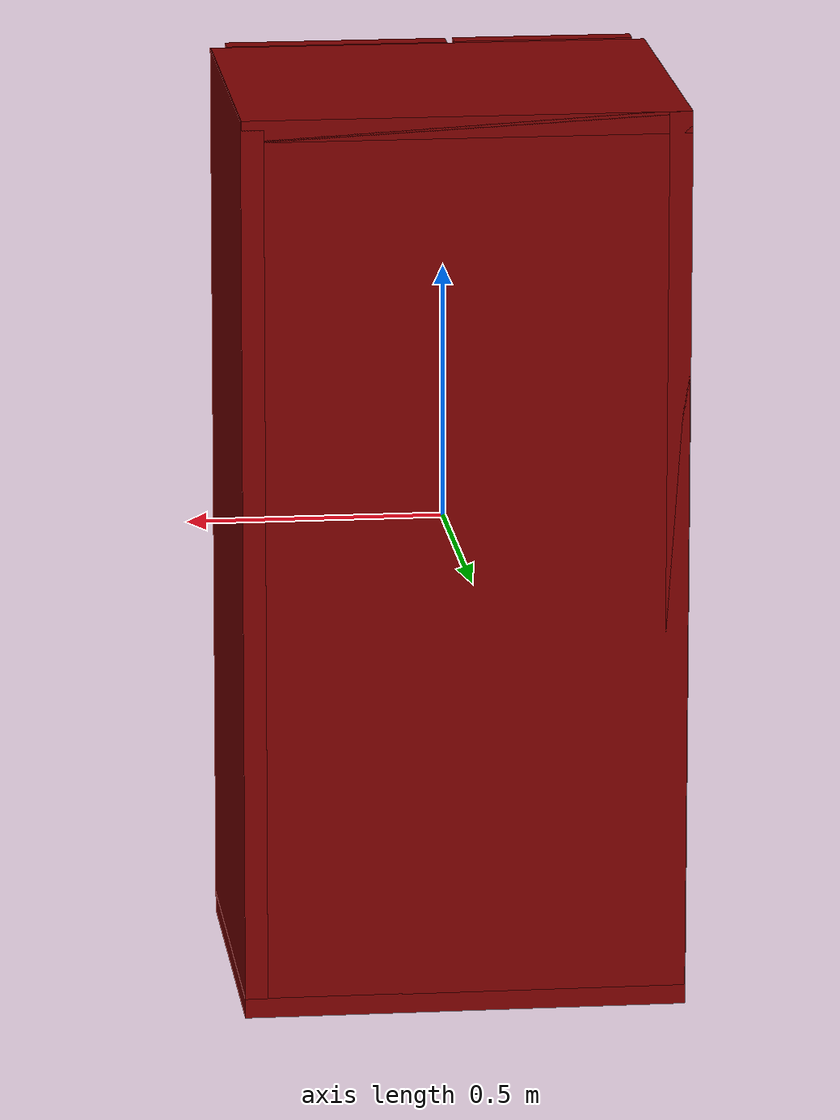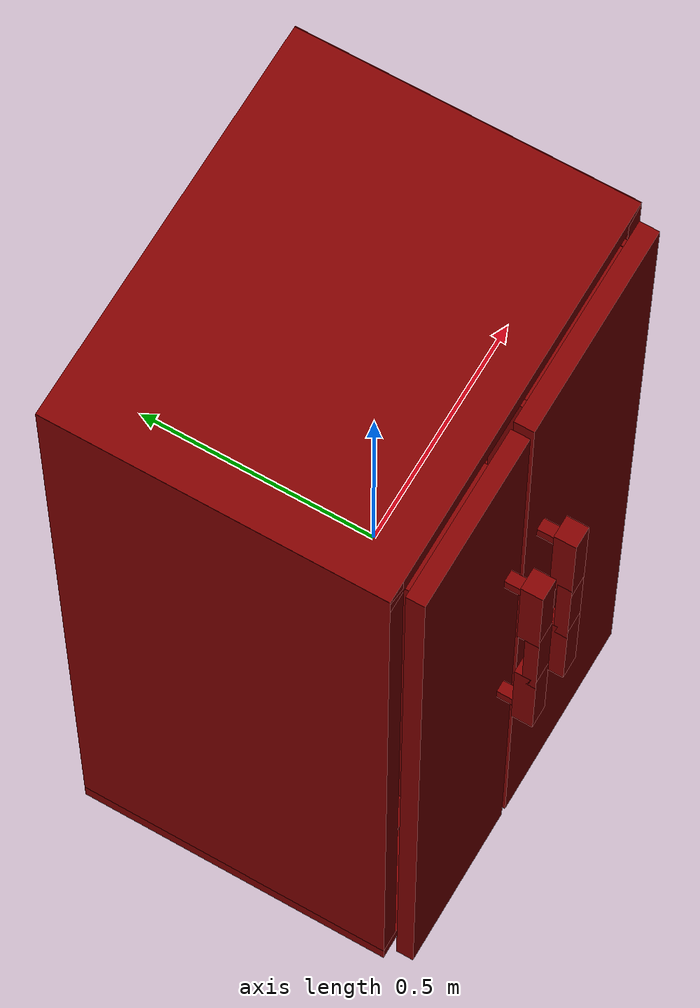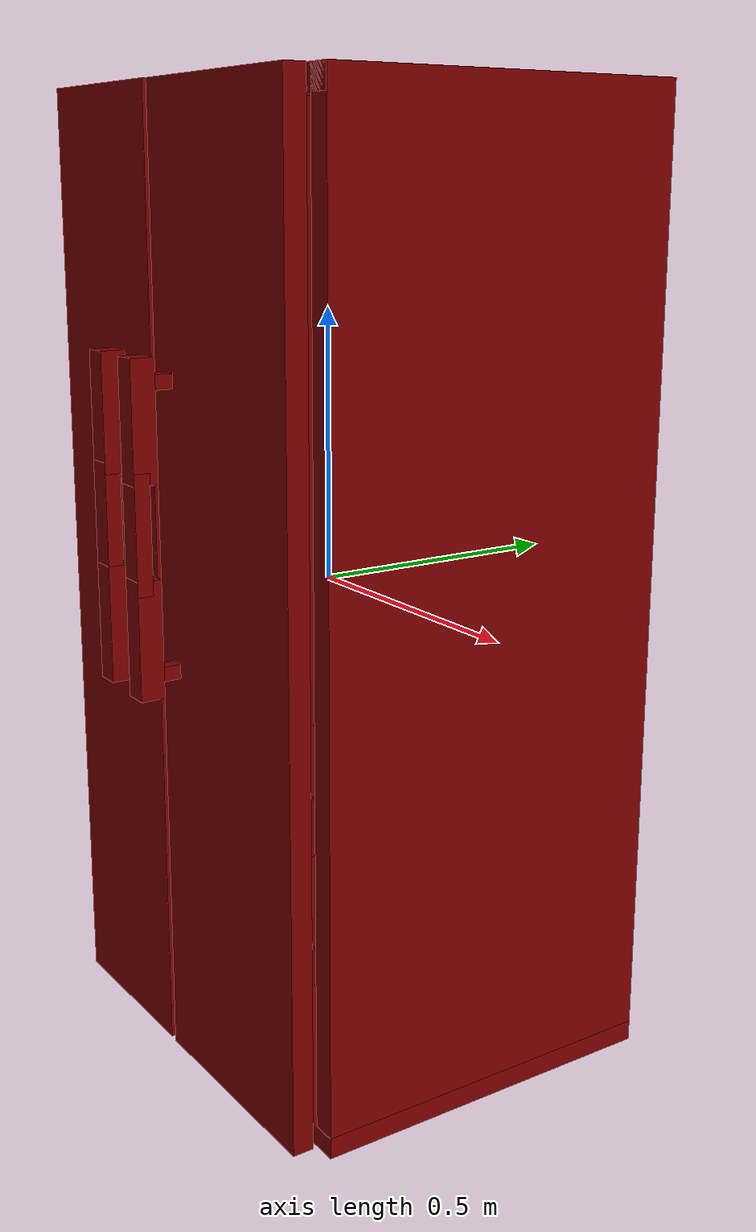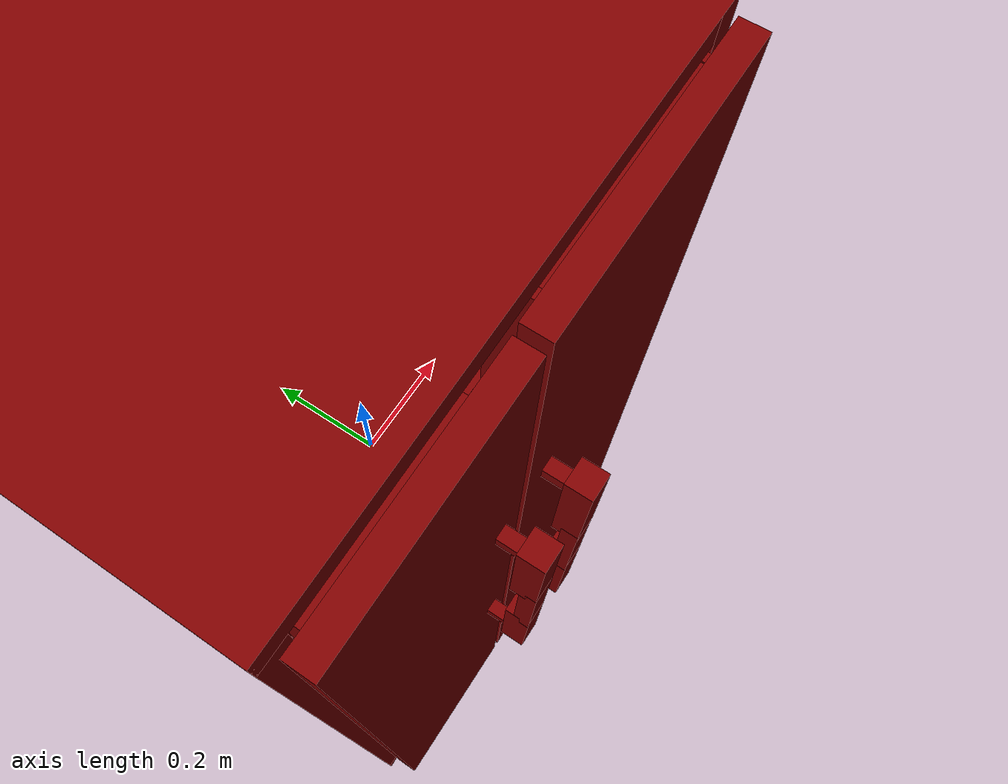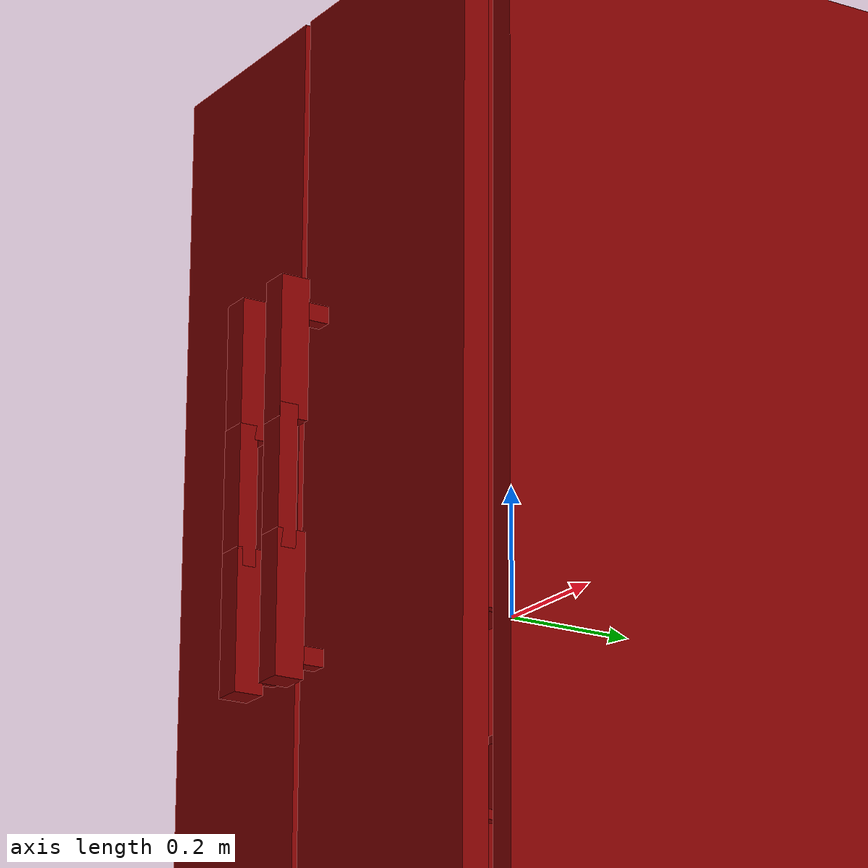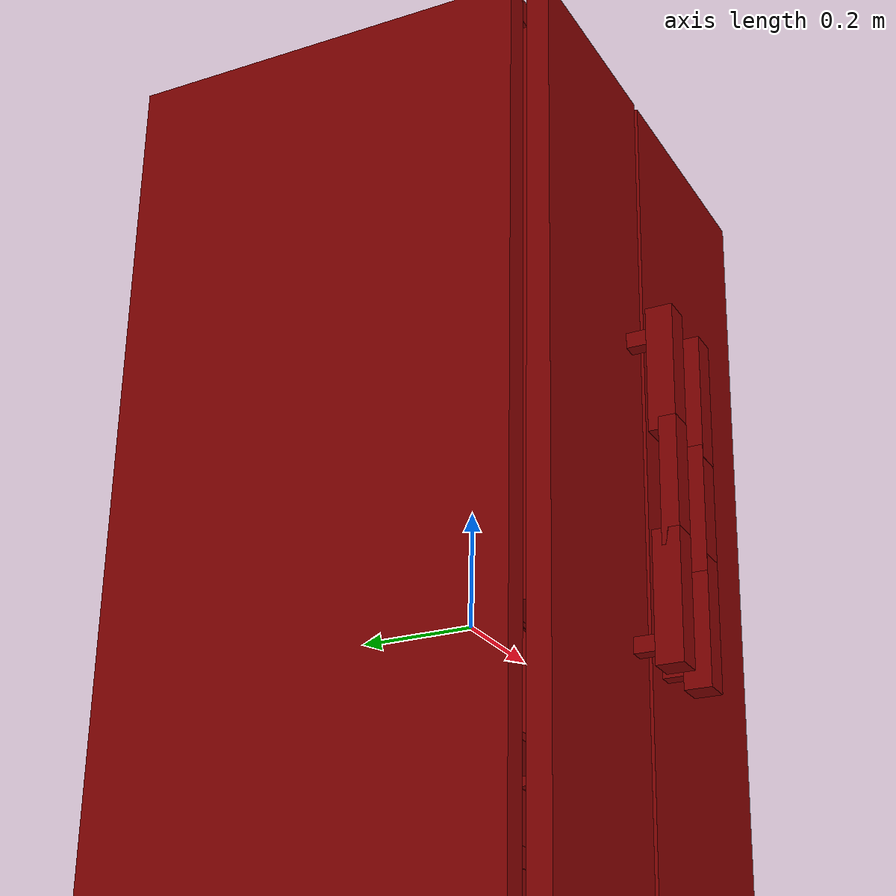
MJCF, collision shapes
<?xml version='1.0' encoding='UTF-8'?>
<mujoco model="model">
  <option timestep="0.002" gravity="0.0 0.0 -9.81"/>
  <compiler angle="radian"/>
  <asset>
    <mesh file="visuals/freezer_door.obj" name="freezer_door_vis"/>
    <mesh file="visuals/freezer_drawer0.obj" name="freezer_drawer0_vis"/>
    <mesh file="visuals/freezer_drawer1.obj" name="freezer_drawer1_vis"/>
    <mesh file="visuals/fridge_door.obj" name="fridge_door_vis"/>
    <mesh file="visuals/fridge_door_Clear.obj" name="fridge_door_Clear_vis"/>
    <mesh file="visuals/Body001.obj" name="Body001_vis"/>
    <mesh file="visuals/Body001_Clear.obj" name="Body001_Clear_vis"/>
    <texture file="visuals/T_BC001.png" name="Body001_material" type="2d"/>
    <material name="Body001_material" rgba="1 1 1 1.0" texture="Body001_material" shininess="0.1" specular="3"/>
    <texture file="visuals/T_BC001.png" name="freezer_door_material" type="2d"/>
    <material name="freezer_door_material" rgba="1 1 1 1.0" texture="freezer_door_material" shininess="0.1" specular="3"/>
    <texture file="visuals/T_BC001.png" name="freezer_drawer0_material" type="2d"/>
    <material name="freezer_drawer0_material" rgba="1 1 1 1.0" texture="freezer_drawer0_material" shininess="0.1" specular="3"/>
    <texture file="visuals/T_BC001.png" name="freezer_drawer1_material" type="2d"/>
    <material name="freezer_drawer1_material" rgba="1 1 1 1.0" texture="freezer_drawer1_material" shininess="0.1" specular="3"/>
    <texture file="visuals/T_BC001.png" name="fridge_door_material" type="2d"/>
    <material name="fridge_door_material" rgba="1 1 1 1.0" texture="fridge_door_material" shininess="0.1" specular="3"/>
    <material name="fridge_door_Clear_material" rgba="0.5225023627281189 0.5225023627281189 0.5225023627281189 0.699999988079071" shininess="0.141421377658844" specular="0.3103448502657381"/>
    <material name="Body001_Clear_material" rgba="0.5225023627281189 0.5225023627281189 0.5225023627281189 0.699999988079071" shininess="0.141421377658844" specular="0.3103448502657381"/>
  </asset>
  <default>
    <default class="visual">
      <geom conaffinity="0" contype="0" group="1" type="mesh"/>
    </default>
    <default class="collision">
      <geom group="0" rgba="0.5 0 0 0.5"/>
    </default>
    <default class="spawn">
      <geom group="0" rgba="1 1 1 0.5" contype="0" conaffinity="0"/>
      <site group="0" rgba="1 1 1 0.5"/>
    </default>
    <default class="region">
      <geom group="1" conaffinity="0" contype="0" rgba="0 1 0 0"/>
    </default>
  </default>
  <worldbody>
    <body>
      <body name="object">
        <geom mesh="Body001_vis" type="mesh" solimp="0.998 0.998 0.001" solref="0.001 1" friction="0.95 0.3 0.1" class="visual" material="Body001_material"/>
        <geom class="collision" type="box" pos="-0.40558642 0.06646353 0.01893135" size="0.02224147319793701 0.34106025099754333 0.864154577255249" quat="1.0 0.0 0.0 0.0"/>
        <geom class="collision" type="box" pos="0.00000081 0.06646352 -0.86372477" size="0.42782869935035706 0.3410602807998657 0.01953286863863468" quat="1.0 0.0 0.0 0.0"/>
        <geom class="collision" type="box" pos="-0.00048127 0.31476472 0.01871308" size="0.4260132610797882 0.09275908768177032 0.8639363050460815" quat="1.0 0.0 0.0 0.0"/>
        <geom class="collision" type="box" pos="0.40598068 0.06646352 0.01891451" size="0.021848827600479126 0.3410602807998657 0.8641376495361328" quat="1.0 0.0 0.0 0.0"/>
        <geom class="collision" type="box" pos="-0.00068813 0.06646353 0.86222970" size="0.42693495750427246 0.3410602807998657 0.02102789282798767" quat="1.0 0.0 0.0 0.0"/>
        <geom class="collision" type="box" pos="0.18456398 0.02568358 0.46186185" size="0.19157791137695312 0.20363794267177582 0.005747407674789429" quat="1.0 0.0 0.0 0.0"/>
        <geom class="collision" type="box" pos="-0.05482076 0.00737048 0.00068855" size="0.03563910722732544 0.21613869071006775 0.8459117412567139" quat="1.0 0.0 0.0 0.0"/>
        <geom class="collision" type="box" pos="0.18456398 0.02889352 0.10416166" size="0.19157791137695312 0.2068478763103485 0.005796272307634354" quat="1.0 0.0 0.0 0.0"/>
        <geom class="collision" type="box" pos="0.18456398 0.00420585 -0.28317815" size="0.19157791137695312 0.23139290511608124 0.005800843238830566" quat="1.0 0.0 0.0 0.0"/>
        <geom class="collision" type="box" pos="0.18456398 0.00519841 -0.56386238" size="0.19157791137695312 0.228432759642601 0.005818471312522888" quat="1.0 0.0 0.0 0.0"/>
        <geom class="collision" type="box" pos="-0.37449354 0.01452575 0.09073272" size="0.009720588102936745 0.20451779663562775 0.007476826664060354" quat="1.0 0.0 0.0 0.0"/>
        <geom class="collision" type="box" pos="-0.09935053 0.01452575 0.09073272" size="0.009720588102936745 0.20451779663562775 0.007476826664060354" quat="1.0 0.0 0.0 0.0"/>
        <geom class="collision" type="box" pos="-0.09935053 0.01452575 0.44766188" size="0.009720588102936745 0.20451779663562775 0.007476826664060354" quat="1.0 0.0 0.0 0.0"/>
        <geom class="collision" type="box" pos="-0.37449354 0.01452575 0.44766188" size="0.009720588102936745 0.20451779663562775 0.007476826664060354" quat="1.0 0.0 0.0 0.0"/>
        <geom class="collision" type="box" pos="-0.09935053 0.01452575 -0.29702917" size="0.009720588102936745 0.20451779663562775 0.007476826664060354" quat="1.0 0.0 0.0 0.0"/>
        <geom class="collision" type="box" pos="-0.37449354 0.01452575 -0.29702917" size="0.009720588102936745 0.20451779663562775 0.007476826664060354" quat="1.0 0.0 0.0 0.0"/>
        <geom class="collision" type="box" pos="-0.37449354 0.01452575 -0.57634544" size="0.009720588102936745 0.20451779663562775 0.007476826664060354" quat="1.0 0.0 0.0 0.0"/>
        <geom class="collision" type="box" pos="-0.09935053 0.01452575 -0.57634544" size="0.009720588102936745 0.20451779663562775 0.007476826664060354" quat="1.0 0.0 0.0 0.0"/>
        <geom class="collision" type="box" pos="0.37541348 0.01452575 -0.57634544" size="0.009720588102936745 0.20451779663562775 0.007476826664060354" quat="1.0 0.0 0.0 0.0"/>
        <geom class="collision" type="box" pos="-0.01160499 0.01452575 -0.57634544" size="0.012617391534149647 0.20451779663562775 0.007476826664060354" quat="1.0 0.0 0.0 0.0"/>
        <geom class="collision" type="box" pos="-0.01160499 0.01452575 -0.29702917" size="0.012617391534149647 0.20451779663562775 0.007476826664060354" quat="1.0 0.0 0.0 0.0"/>
        <geom class="collision" type="box" pos="0.37541348 0.01452575 -0.29702917" size="0.009720588102936745 0.20451779663562775 0.007476826664060354" quat="1.0 0.0 0.0 0.0"/>
        <geom class="collision" type="box" pos="-0.01160499 0.01452575 0.44766188" size="0.012617391534149647 0.20451779663562775 0.007476826664060354" quat="1.0 0.0 0.0 0.0"/>
        <geom class="collision" type="box" pos="0.37541348 0.01452575 0.44766188" size="0.009720588102936745 0.20451779663562775 0.007476826664060354" quat="1.0 0.0 0.0 0.0"/>
        <geom class="collision" type="box" pos="0.37541348 0.01452575 0.09073272" size="0.009720588102936745 0.20451779663562775 0.007476826664060354" quat="1.0 0.0 0.0 0.0"/>
        <geom class="collision" type="box" pos="-0.01160499 0.01452575 0.09073272" size="0.012617391534149647 0.20451779663562775 0.007476826664060354" quat="1.0 0.0 0.0 0.0"/>
        <geom class="collision" type="box" pos="-0.23986101 0.00519841 -0.56386238" size="0.15474635362625122 0.228432759642601 0.005818471312522888" quat="1.0 0.0 0.0 0.0"/>
        <geom class="collision" type="box" pos="-0.23986101 0.00420585 -0.28317815" size="0.15474635362625122 0.23139290511608124 0.005800843238830566" quat="1.0 0.0 0.0 0.0"/>
        <geom class="collision" type="box" pos="-0.23986101 0.02889352 0.10416166" size="0.15474635362625122 0.2068478763103485 0.005796272307634354" quat="1.0 0.0 0.0 0.0"/>
        <geom class="collision" type="box" pos="-0.23986101 0.02568358 0.46186185" size="0.15474635362625122 0.20363794267177582 0.005747407674789429" quat="1.0 0.0 0.0 0.0"/>
        <body name="freezer_door">
          <joint axis="0.0 0.0 -1.0" pos="-0.40142199 -0.30193393 0.00226963" limited="true" name="freezer_door_joint" range="0.0 1.5707963267948966" type="hinge" damping="1" frictionloss="1" armature=".01" stiffness="0.05"/>
          <geom mesh="freezer_door_vis" type="mesh" solimp="0.998 0.998 0.001" solref="0.001 1" friction="0.95 0.3 0.1" class="visual" material="freezer_door_material"/>
          <geom class="collision" type="box" pos="-0.10201722 -0.34847351 0.39473000" size="0.012457430362701416 0.022546809166669846 0.013203483074903488" quat="1.0 0.0 0.0 0.0" name="freezer_door_handle_1"/>
          <geom class="collision" type="box" pos="-0.10201722 -0.34847363 -0.11380103" size="0.012457430362701416 0.022546809166669846 0.013203475624322891" quat="1.0 0.0 0.0 0.0" name="freezer_door_handle_4"/>
          <geom class="collision" type="box" pos="-0.10135063 -0.38698669 0.33145750" size="0.02305717021226883 0.022403938695788383 0.10686296969652176" quat="1.0 0.0 0.0 0.0" name="freezer_door_handle_2"/>
          <geom class="collision" type="box" pos="-0.10135063 -0.38763853 -0.04615949" size="0.02305717021226883 0.02240392193198204 0.10686295479536057" quat="1.0 0.0 0.0 0.0" name="freezer_door_handle_3"/>
          <geom class="collision" type="box" pos="-0.10135063 -0.39540501 0.13958685" size="0.02305717021226883 0.014506700448691845 0.10626012086868286" quat="1.0 0.0 0.0 0.0" name="freezer_door_handle_main"/>
          <geom class="collision" type="box" pos="-0.22960231 -0.30920227 0.00329760" size="0.17586880922317505 0.018665660172700882 0.879378080368042" quat="1.0 0.0 0.0 0.0" name="freezer_door_main"/>
          <geom class="collision" type="box" pos="-0.14295837 -0.20212524 -0.04004654" size="0.005480065941810608 0.030950354412198067 0.0417511947453022" quat="1.0 0.0 0.0 0.0"/>
          <geom class="collision" type="box" pos="-0.24828275 -0.17534315 -0.04164654" size="0.10006259381771088 0.002234865678474307 0.0401512011885643" quat="1.0 0.0 0.0 0.0"/>
          <geom class="collision" type="box" pos="-0.35010812 -0.20212524 -0.04004654" size="0.005480064079165459 0.030950354412198067 0.0417511947453022" quat="1.0 0.0 0.0 0.0"/>
          <geom class="collision" type="box" pos="-0.24668524 -0.20212524 -0.07657582" size="0.09915632009506226 0.030950354412198067 0.005221928935497999" quat="1.0 0.0 0.0 0.0"/>
          <geom class="collision" type="box" pos="-0.24253975 -0.25912248 0.35766223" size="0.13268016278743744 0.02590564265847206 0.4776783585548401" quat="1.0 0.0 0.0 0.0"/>
        </body>
        <body name="freezer_drawer0">
          <geom class="region" name="reg_freezer_drawer0" type="box" pos="-0.211152965 0.005938525 -0.7072643649999999" size="0.09888519500000001 0.138482465 0.104442015"/>
          <joint axis="0.0 -1.0 0.0" pos="-0.21256955 -0.00256586 -0.71427310" limited="true" name="freezer_drawer0_joint" range="0.0 0.4" type="slide" damping="1" frictionloss="1" armature=".01" stiffness="0.05"/>
          <geom mesh="freezer_drawer0_vis" type="mesh" solimp="0.998 0.998 0.001" solref="0.001 1" friction="0.95 0.3 0.1" class="visual" material="freezer_drawer0_material"/>
          <geom class="collision" type="box" pos="-0.21376190 -0.00261774 -0.81944394" size="0.11214364320039749 0.1556040346622467 0.0026356198359280825" quat="1.0 0.0 0.0 0.0"/>
          <geom class="collision" type="box" pos="-0.10495828 -0.00261774 -0.71025378" size="0.002996751107275486 0.15560412406921387 0.11202725768089294" quat="1.0 0.0 0.0 0.0"/>
          <geom class="collision" type="box" pos="-0.32125536 -0.00261774 -0.71025372" size="0.004637867212295532 0.15560421347618103 0.11202718317508698" quat="1.0 0.0 0.0 0.0"/>
          <geom class="collision" type="box" pos="-0.21376188 0.15405954 -0.71025378" size="0.11214320361614227 0.0037469391245394945 0.11202709376811981" quat="1.0 0.0 0.0 0.0"/>
          <geom class="collision" type="box" pos="-0.21293235 -0.15002160 -0.63882315" size="0.1203082725405693 0.012931019999086857 0.04129289835691452" quat="1.0 0.0 0.0 0.0"/>
          <geom class="collision" type="box" pos="-0.21293235 -0.15002160 -0.77246428" size="0.1203082725405693 0.01293113175779581 0.05884507670998573" quat="1.0 0.0 0.0 0.0"/>
          <geom class="collision" type="box" pos="-0.28778118 -0.15002160 -0.69676310" size="0.045459430664777756 0.012931142002344131 0.016322702169418335" quat="1.0 0.0 0.0 0.0"/>
          <geom class="collision" type="box" pos="-0.12964216 -0.15002160 -0.69676310" size="0.03674136474728584 0.012931152246892452 0.016322722658514977" quat="1.0 0.0 0.0 0.0"/>
          <geom class="collision" type="box" pos="-0.20464267 -0.13960667 -0.69676310" size="0.03674136474728584 0.002516374457627535 0.01632274128496647" quat="1.0 0.0 0.0 0.0"/>
          <geom class="collision" type="box" pos="-0.20464267 -0.14920171 -0.69691926" size="0.03674136474728584 0.0025164210237562656 0.016323115676641464" quat="0.9614013433456421 -0.27514979243278503 -0.0 0.0"/>
        </body>
        <body name="freezer_drawer1">
          <geom class="region" name="reg_freezer_drawer1" type="box" pos="-0.211152965 0.005938525 -0.4326818" size="0.09888519500000001 0.138482465 0.10441573000000001"/>
          <joint axis="0.0 -1.0 0.0" pos="-0.21256955 -0.00256586 -0.43849957" limited="true" name="freezer_drawer1_joint" range="0.0 0.4" type="slide" damping="1" frictionloss="1" armature=".01" stiffness="0.05"/>
          <geom mesh="freezer_drawer1_vis" type="mesh" solimp="0.998 0.998 0.001" solref="0.001 1" friction="0.95 0.3 0.1" class="visual" material="freezer_drawer1_material"/>
          <geom class="collision" type="box" pos="-0.21250020 -0.15110717 -0.36350054" size="0.12162725627422333 0.013595592230558395 0.04247790947556496" quat="1.0 0.0 0.0 0.0"/>
          <geom class="collision" type="box" pos="-0.21214403 0.15532319 -0.43599984" size="0.11226984858512878 0.005191416013985872 0.11213696748018265" quat="1.0 0.0 0.0 0.0"/>
          <geom class="collision" type="box" pos="-0.32137153 -0.00009128 -0.43599984" size="0.0030306766275316477 0.15578614175319672 0.11213703453540802" quat="1.0 0.0 0.0 0.0"/>
          <geom class="collision" type="box" pos="-0.10397597 -0.00009128 -0.43599984" size="0.003758735489100218 0.1557861566543579 0.11213710159063339" quat="1.0 0.0 0.0 0.0"/>
          <geom class="collision" type="box" pos="-0.21214405 -0.00009128 -0.54473317" size="0.11226989328861237 0.1557861715555191 0.0031994571909308434" quat="1.0 0.0 0.0 0.0"/>
          <geom class="collision" type="box" pos="-0.20464267 -0.15084273 -0.42125165" size="0.03674136474728584 0.0025164210237562656 0.016323115676641464" quat="0.9613451957702637 -0.27534598112106323 -0.0 0.0"/>
          <geom class="collision" type="box" pos="-0.20464267 -0.13960667 -0.42019361" size="0.03674136474728584 0.002516377018764615 0.01632276177406311" quat="1.0 0.0 0.0 0.0"/>
          <geom class="collision" type="box" pos="-0.12882850 -0.15106819 -0.42019361" size="0.0375550352036953 0.013977772556245327 0.016322782263159752" quat="1.0 0.0 0.0 0.0"/>
          <geom class="collision" type="box" pos="-0.28778118 -0.15106819 -0.42019361" size="0.045459430664777756 0.013977782800793648 0.016322802752256393" quat="1.0 0.0 0.0 0.0"/>
          <geom class="collision" type="box" pos="-0.21211869 -0.15106819 -0.49589482" size="0.12112192809581757 0.013977793045341969 0.0588456466794014" quat="1.0 0.0 0.0 0.0"/>
        </body>
        <body name="fridge_door">
          <joint axis="0.0 0.0 1.0" pos="0.40183154 -0.30193393 0.00263427" limited="true" name="fridge_door_joint" range="0.0 1.5707963267948966" type="hinge" damping="1" frictionloss="1" armature=".01" stiffness="0.05"/>
          <geom mesh="fridge_door_vis" type="mesh" solimp="0.998 0.998 0.001" solref="0.001 1" friction="0.95 0.3 0.1" class="visual" material="fridge_door_material"/>
          <geom class="collision" type="box" pos="0.01425793 -0.34956708 0.39272022" size="0.012510329484939575 0.022645458579063416 0.01325976476073265" quat="1.0 0.0 0.0 0.0" name="fridge_door_handle_1"/>
          <geom class="collision" type="box" pos="0.01425793 -0.34956719 -0.11811678" size="0.012510430067777634 0.022645561024546623 0.013259858824312687" quat="1.0 0.0 0.0 0.0" name="fridge_door_handle_4"/>
          <geom class="collision" type="box" pos="0.01492754 -0.38825439 0.32916081" size="0.02315494976937771 0.022502142935991287 0.10732044279575348" quat="1.0 0.0 0.0 0.0" name="fridge_door_handle_2"/>
          <geom class="collision" type="box" pos="0.01492754 -0.38804098 -0.05016853" size="0.023155152797698975 0.022502226755023003 0.10732124000787735" quat="1.0 0.0 0.0 0.0" name="fridge_door_handle_3"/>
          <geom class="collision" type="box" pos="0.01492754 -0.39584263 0.13642009" size="0.02315535396337509 0.014569297432899475 0.10671648383140564" quat="1.0 0.0 0.0 0.0" name="fridge_door_handle_main"/>
          <geom class="collision" type="box" pos="0.17758834 -0.30798702 0.00219705" size="0.2170318365097046 0.019880905747413635 0.8798536062240601" quat="1.0 0.0 0.0 0.0" name="fridge_door_main"/>
          <geom class="collision" type="box" pos="0.35212770 -0.22445983 0.16216213" size="0.004108804743736982 0.03251062333583832 0.04862546920776367" quat="1.0 0.0 0.0 0.0"/>
          <geom class="collision" type="box" pos="0.03371753 -0.22445983 0.16216213" size="0.00410880520939827 0.03251062333583832 0.04862546920776367" quat="1.0 0.0 0.0 0.0"/>
          <geom class="collision" type="box" pos="0.19286145 -0.19614210 0.16216213" size="0.16337506473064423 0.0021437890827655792 0.04862546920776367" quat="1.0 0.0 0.0 0.0"/>
          <geom class="collision" type="box" pos="0.19286145 -0.24422642 0.11610843" size="0.16337506473064423 0.029638219624757767 0.00257178395986557" quat="1.0 0.0 0.0 0.0"/>
          <geom class="collision" type="box" pos="0.19286145 -0.26276263 0.16216215" size="0.16337506473064423 0.002143790014088154 0.04862546920776367" quat="1.0 0.0 0.0 0.0"/>
          <geom class="collision" type="box" pos="0.19286145 -0.26326360 -0.05256009" size="0.16337506473064423 0.002143790014088154 0.048766158521175385" quat="1.0 0.0 0.0 0.0"/>
          <geom class="collision" type="box" pos="0.19286145 -0.24450779 -0.09875448" size="0.16337506473064423 0.02935684844851494 0.00257178395986557" quat="1.0 0.0 0.0 0.0"/>
          <geom class="collision" type="box" pos="0.19286145 -0.19522767 -0.05256011" size="0.16337506473064423 0.0021437890827655792 0.048766158521175385" quat="1.0 0.0 0.0 0.0"/>
          <geom class="collision" type="box" pos="0.03371753 -0.22326404 -0.05256011" size="0.00410880520939827 0.03222925215959549 0.048766158521175385" quat="1.0 0.0 0.0 0.0"/>
          <geom class="collision" type="box" pos="0.35212770 -0.22326404 -0.05256011" size="0.004108804743736982 0.03222925215959549 0.048766158521175385" quat="1.0 0.0 0.0 0.0"/>
          <geom class="collision" type="box" pos="0.03371753 -0.22462191 0.39394438" size="0.00410880520939827 0.03287752717733383 0.049426592886447906" quat="1.0 0.0 0.0 0.0"/>
          <geom class="collision" type="box" pos="0.19439667 -0.19593727 0.39394438" size="0.15882854163646698 0.0021437890827655792 0.049426592886447906" quat="1.0 0.0 0.0 0.0"/>
          <geom class="collision" type="box" pos="0.19286145 -0.24385952 0.34708959" size="0.16337506473064423 0.03000512346625328 0.00257178395986557" quat="1.0 0.0 0.0 0.0"/>
          <geom class="collision" type="box" pos="0.19286145 -0.26201933 0.39394438" size="0.16337506473064423 0.002143790014088154 0.049426592886447906" quat="1.0 0.0 0.0 0.0"/>
          <geom class="collision" type="box" pos="0.19286145 -0.24342530 0.57010865" size="0.16337506473064423 0.030439343303442 0.00257178395986557" quat="1.0 0.0 0.0 0.0"/>
          <geom class="collision" type="box" pos="0.19286145 -0.19300673 0.61637723" size="0.16337506473064423 0.0021437890827655792 0.04884042590856552" quat="1.0 0.0 0.0 0.0"/>
          <geom class="collision" type="box" pos="0.03371753 -0.22816352 0.61637723" size="0.00410880520939827 0.03331174701452255 0.04884042590856552" quat="1.0 0.0 0.0 0.0"/>
          <geom class="collision" type="box" pos="0.35212770 -0.22816352 0.61637723" size="0.004108804743736982 0.03331174701452255 0.04884042590856552" quat="1.0 0.0 0.0 0.0"/>
          <geom class="collision" type="box" pos="0.35212770 -0.22462191 0.39394438" size="0.004108804743736982 0.03287752717733383 0.049426592886447906" quat="1.0 0.0 0.0 0.0"/>
          <geom class="collision" type="box" pos="0.19286145 -0.26055234 0.61637723" size="0.16337506473064423 0.002143790014088154 0.04884042590856552" quat="1.0 0.0 0.0 0.0"/>
          <geom class="collision" type="box" pos="0.36733827 -0.25255935 0.35632089" size="0.00753939151763916 0.03347475826740265 0.480341374874115" quat="1.0 0.0 0.0 0.0"/>
          <geom class="collision" type="box" pos="0.01774490 -0.25255935 0.35632089" size="0.00753939151763916 0.03347475826740265 0.480341374874115" quat="1.0 0.0 0.0 0.0"/>
          <geom class="collision" type="box" pos="0.19253692 -0.25255935 0.82734025" size="0.16718587279319763 0.03347475826740265 0.007671833038330078" quat="1.0 0.0 0.0 0.0"/>
          <geom class="collision" type="box" pos="0.19253692 -0.25255935 -0.11704285" size="0.16718587279319763 0.03347475826740265 0.007671833038330078" quat="1.0 0.0 0.0 0.0"/>
          <body name="fridge_door_Clear">
            <geom mesh="fridge_door_Clear_vis" type="mesh" solimp="0.998 0.998 0.001" solref="0.001 1" friction="0.95 0.3 0.1" class="visual" material="fridge_door_Clear_material"/>
            <geom class="collision" type="box" pos="0.35212770 -0.22445983 0.16216213" size="0.004108804743736982 0.03251062333583832 0.04862546920776367" quat="1.0 0.0 0.0 0.0"/>
            <geom class="collision" type="box" pos="0.03371753 -0.22445983 0.16216213" size="0.00410880520939827 0.03251062333583832 0.04862546920776367" quat="1.0 0.0 0.0 0.0"/>
            <geom class="collision" type="box" pos="0.19286145 -0.19614210 0.16216213" size="0.16337506473064423 0.0021437890827655792 0.04862546920776367" quat="1.0 0.0 0.0 0.0"/>
            <geom class="collision" type="box" pos="0.19286145 -0.24422642 0.11610843" size="0.16337506473064423 0.029638219624757767 0.00257178395986557" quat="1.0 0.0 0.0 0.0"/>
            <geom class="collision" type="box" pos="0.19286145 -0.26276263 0.16216215" size="0.16337506473064423 0.002143790014088154 0.04862546920776367" quat="1.0 0.0 0.0 0.0"/>
            <geom class="collision" type="box" pos="0.19286145 -0.26326360 -0.05256009" size="0.16337506473064423 0.002143790014088154 0.048766158521175385" quat="1.0 0.0 0.0 0.0"/>
            <geom class="collision" type="box" pos="0.19286145 -0.24450779 -0.09875448" size="0.16337506473064423 0.02935684844851494 0.00257178395986557" quat="1.0 0.0 0.0 0.0"/>
            <geom class="collision" type="box" pos="0.19286145 -0.19522767 -0.05256011" size="0.16337506473064423 0.0021437890827655792 0.048766158521175385" quat="1.0 0.0 0.0 0.0"/>
            <geom class="collision" type="box" pos="0.03371753 -0.22326404 -0.05256011" size="0.00410880520939827 0.03222925215959549 0.048766158521175385" quat="1.0 0.0 0.0 0.0"/>
            <geom class="collision" type="box" pos="0.35212770 -0.22326404 -0.05256011" size="0.004108804743736982 0.03222925215959549 0.048766158521175385" quat="1.0 0.0 0.0 0.0"/>
            <geom class="collision" type="box" pos="0.03371753 -0.22462191 0.39394438" size="0.00410880520939827 0.03287752717733383 0.049426592886447906" quat="1.0 0.0 0.0 0.0"/>
            <geom class="collision" type="box" pos="0.19439667 -0.19593727 0.39394438" size="0.15882854163646698 0.0021437890827655792 0.049426592886447906" quat="1.0 0.0 0.0 0.0"/>
            <geom class="collision" type="box" pos="0.19286145 -0.24385952 0.34708959" size="0.16337506473064423 0.03000512346625328 0.00257178395986557" quat="1.0 0.0 0.0 0.0"/>
            <geom class="collision" type="box" pos="0.19286145 -0.26201933 0.39394438" size="0.16337506473064423 0.002143790014088154 0.049426592886447906" quat="1.0 0.0 0.0 0.0"/>
            <geom class="collision" type="box" pos="0.19286145 -0.24342530 0.57010865" size="0.16337506473064423 0.030439343303442 0.00257178395986557" quat="1.0 0.0 0.0 0.0"/>
            <geom class="collision" type="box" pos="0.19286145 -0.19300673 0.61637723" size="0.16337506473064423 0.0021437890827655792 0.04884042590856552" quat="1.0 0.0 0.0 0.0"/>
            <geom class="collision" type="box" pos="0.03371753 -0.22816352 0.61637723" size="0.00410880520939827 0.03331174701452255 0.04884042590856552" quat="1.0 0.0 0.0 0.0"/>
            <geom class="collision" type="box" pos="0.35212770 -0.22816352 0.61637723" size="0.004108804743736982 0.03331174701452255 0.04884042590856552" quat="1.0 0.0 0.0 0.0"/>
            <geom class="collision" type="box" pos="0.35212770 -0.22462191 0.39394438" size="0.004108804743736982 0.03287752717733383 0.049426592886447906" quat="1.0 0.0 0.0 0.0"/>
            <geom class="collision" type="box" pos="0.19286145 -0.26055234 0.61637723" size="0.16337506473064423 0.002143790014088154 0.04884042590856552" quat="1.0 0.0 0.0 0.0"/>
          </body>
        </body>
        <body name="Body001_Clear">
          <geom mesh="Body001_Clear_vis" type="mesh" solimp="0.998 0.998 0.001" solref="0.001 1" friction="0.95 0.3 0.1" class="visual" material="Body001_Clear_material"/>
          <geom class="collision" type="box" pos="0.18456398 0.02568358 0.46186185" size="0.19157791137695312 0.20363794267177582 0.005747407674789429" quat="1.0 0.0 0.0 0.0"/>
          <geom class="collision" type="box" pos="0.18456398 0.02889352 0.10416166" size="0.19157791137695312 0.2068478763103485 0.005796272307634354" quat="1.0 0.0 0.0 0.0"/>
          <geom class="collision" type="box" pos="0.18456398 0.00420585 -0.28317815" size="0.19157791137695312 0.23139290511608124 0.005800843238830566" quat="1.0 0.0 0.0 0.0"/>
          <geom class="collision" type="box" pos="0.18456398 0.00519841 -0.56386238" size="0.19157791137695312 0.228432759642601 0.005818471312522888" quat="1.0 0.0 0.0 0.0"/>
        </body>
        <geom class="region" name="reg_fridge_shelf4" type="box" pos="0.184758895 0.021354974999999998 0.654133945" size="0.198624125 0.189838655 0.182148495"/>
        <geom class="region" name="reg_fridge_shelf3" type="box" pos="0.18325243 0.021785045000000003 0.28272685" size="0.17669798 0.190504475 0.16842671"/>
        <geom class="region" name="reg_fridge_shelf2" type="box" pos="0.18223325 0.02180895499999999 -0.08957761" size="0.17631216 0.188325355 0.18343844"/>
        <geom class="region" name="reg_fridge_shelf1" type="box" pos="0.186103975 -0.0034056999999999976 -0.42306177" size="0.18007732499999998 0.21346616000000002 0.1296477"/>
        <geom class="region" name="reg_fridge_shelf0" type="box" pos="0.18384233500000002 -0.0012105599999999994 -0.706801595" size="0.177551815 0.2156391 0.13198132499999998"/>
        <geom class="region" name="reg_freezer_shelf2" type="box" pos="-0.23626529999999998 0.020880314999999997 0.6540862350000001" size="0.1436276 0.190177315 0.18208004500000002"/>
        <geom class="region" name="reg_freezer_shelf1" type="box" pos="-0.236948795 0.022806814999999994 0.28299963" size="0.12326372499999999 0.18960380500000001 0.16840718999999998"/>
        <geom class="region" name="reg_freezer_shelf0" type="box" pos="-0.23737639500000002 0.021702089999999993 -0.08946467000000001" size="0.12283606500000001 0.18849907999999999 0.1835326"/>
        <geom class="region" name="reg_main" type="box" pos="7.99999999995249e-07 0.039827909999999994 0.0" size="0.42882869999999995 0.36869587000000004 0.88425757"/>
      </body>
    </body>
  </worldbody>
  <actuator>
    <motor name="freezer_door_joint_actuator" joint="freezer_door_joint" gear="50"/>
    <motor name="freezer_drawer0_joint_actuator" joint="freezer_drawer0_joint" gear="50"/>
    <motor name="freezer_drawer1_joint_actuator" joint="freezer_drawer1_joint" gear="50"/>
    <motor name="fridge_door_joint_actuator" joint="fridge_door_joint" gear="50"/>
  </actuator>
</mujoco>
